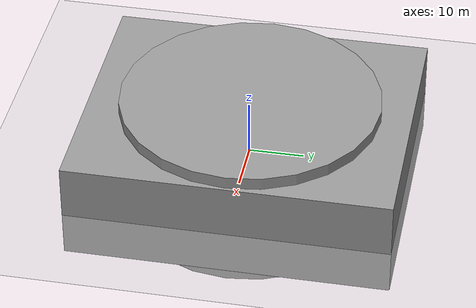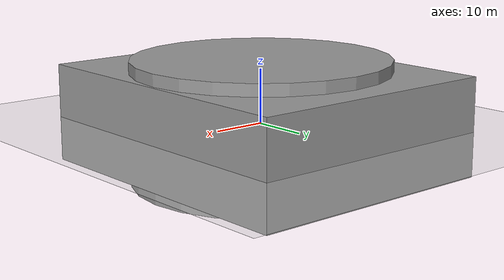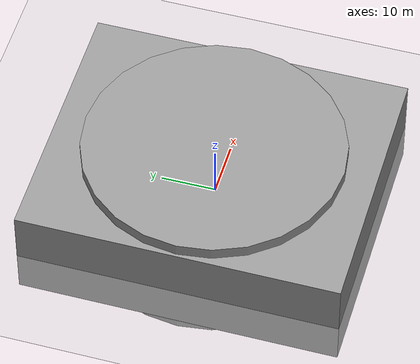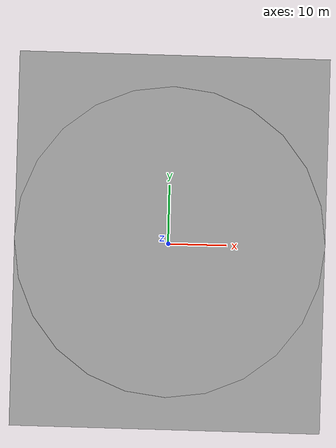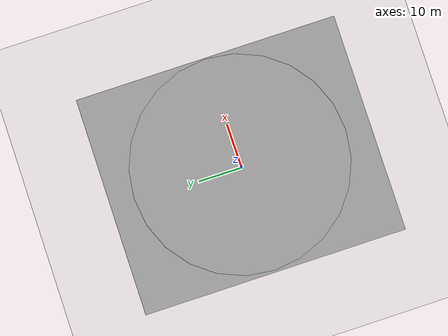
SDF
<sdf version="1.6">
 <world name="default">
  <light name="sun" type="directional">
   <pose>0 0 10 0 -0 0</pose>
   <diffuse>0.8 0.8 0.8 1</diffuse>
   <specular>0.2 0.2 0.2 1</specular>
   <attenuation>
    <range>1000</range>
    <constant>0.9</constant>
    <linear>0.01</linear>
    <quadratic>0.001</quadratic>
   </attenuation>
   <direction>-0.5 0.1 -0.9</direction>
  </light>
  <model name="ground_plane">
   <static>1</static>
   <link name="link">
    <collision name="collision">
     <geometry><plane><normal>0 0 1</normal><size>100 100</size></plane></geometry>
     <surface>
      <contact><collide_bitmask>65535</collide_bitmask></contact>
      <friction><ode><mu>100</mu><mu2>50</mu2></ode></friction>
     </surface>
    </collision>
    <visual name="visual">
     <cast_shadows>0</cast_shadows>
     <geometry><plane><normal>0 0 1</normal><size>100 100</size></plane></geometry>
     <material>
      <script><uri>file://media/materials/scripts/gazebo.material</uri><name>Gazebo/Grey</name></script>
     </material>
    </visual>
   </link>
  </model>
  <gravity>0 0 -9.8</gravity>
  <magnetic_field>6e-06 2.3e-05 -4.2e-05</magnetic_field>
  <atmosphere type="adiabatic"/>
  <physics name="default_physics" default="0" type="ode">
   <max_step_size>0.001</max_step_size>
   <real_time_factor>1</real_time_factor>
   <real_time_update_rate>1000</real_time_update_rate>
  </physics>
  <scene><ambient>0.4 0.4 0.4 1</ambient><background>0.7 0.7 0.7 1</background><shadows>1</shadows></scene>
  <spherical_coordinates>
   <surface_model>EARTH_WGS84</surface_model>
   <latitude_deg>0</latitude_deg>
   <longitude_deg>0</longitude_deg>
   <elevation>0</elevation>
   <heading_deg>0</heading_deg>
  </spherical_coordinates>
  <model name="unit_box">
   <pose>0.247312 0.22963 0.802626 -4.5e-05 -2.9e-05 5.6e-05</pose>
   <link name="link">
    <inertial>
     <mass>1</mass>
     <inertia>
      <ixx>0.166667</ixx>
      <ixy>0</ixy>
      <ixz>0</ixz>
      <iyy>0.166667</iyy>
      <iyz>0</iyz>
      <izz>0.166667</izz>
     </inertia>
    </inertial>
    <collision name="collision"><geometry><box><size>48.2671 58.2264 18.0991</size></box></geometry></collision>
    <visual name="visual">
     <geometry><box><size>48.2671 58.2264 18.0991</size></box></geometry>
     <material>
      <script><name>Gazebo/Grey</name><uri>file://media/materials/scripts/gazebo.material</uri></script>
     </material>
    </visual>
   </link>
  </model>
  <model name="unit_cylinder">
   <pose>0.240745 0.29494 0.797172 -0.000847 0.000382 -0.000326</pose>
   <link name="link">
    <inertial>
     <mass>1</mass>
     <inertia><ixx>0.145833</ixx><ixy>0</ixy><ixz>0</ixz><iyy>0.145833</iyy><iyz>0</iyz><izz>0.125</izz></inertia>
    </inertial>
    <collision name="collision">
     <geometry><cylinder><radius>23.629</radius><length>22.5609</length></cylinder></geometry>
    </collision>
    <visual name="visual">
     <geometry><cylinder><radius>23.629</radius><length>22.5609</length></cylinder></geometry>
     <material>
      <script><name>Gazebo/Grey</name><uri>file://media/materials/scripts/gazebo.material</uri></script>
     </material>
    </visual>
   </link>
  </model>
  <model name="unit_box_clone">
   <pose>0.181146 0.268346 0.802626 3.6e-05 2.5e-05 5.6e-05</pose>
   <link name="link">
    <inertial>
     <mass>1</mass>
     <inertia>
      <ixx>0.166667</ixx>
      <ixy>0</ixy>
      <ixz>0</ixz>
      <iyy>0.166667</iyy>
      <iyz>0</iyz>
      <izz>0.166667</izz>
     </inertia>
    </inertial>
    <collision name="collision"><geometry><box><size>0.020718 0.017173 0.05525</size></box></geometry></collision>
    <visual name="visual">
     <geometry><box><size>0.020718 0.017173 0.05525</size></box></geometry>
     <material>
      <script><name>Gazebo/Grey</name><uri>file://media/materials/scripts/gazebo.material</uri></script>
     </material>
    </visual>
   </link>
  </model>
  <model name="unit_cylinder_clone">
   <pose>0.204021 0.322627 0.797162 -0.0008 0.000386 -0.000326</pose>
   <link name="link">
    <inertial>
     <mass>1</mass>
     <inertia><ixx>0.145833</ixx><ixy>0</ixy><ixz>0</ixz><iyy>0.145833</iyy><iyz>0</iyz><izz>0.125</izz></inertia>
    </inertial>
    <collision name="collision">
     <geometry><cylinder><radius>0.0105804</radius><length>0.0443242</length></cylinder></geometry>
    </collision>
    <visual name="visual">
     <geometry><cylinder><radius>0.0105804</radius><length>0.0443242</length></cylinder></geometry>
     <material>
      <script><name>Gazebo/Grey</name><uri>file://media/materials/scripts/gazebo.material</uri></script>
     </material>
    </visual>
   </link>
  </model>
  <model name="unit_box_clone_clone">
   <pose>0.155351 0.297696 0.802626 3.6e-05 2.5e-05 5.6e-05</pose>
   <link name="link">
    <inertial>
     <mass>1</mass>
     <inertia>
      <ixx>0.166667</ixx>
      <ixy>0</ixy>
      <ixz>0</ixz>
      <iyy>0.166667</iyy>
      <iyz>0</iyz>
      <izz>0.166667</izz>
     </inertia>
    </inertial>
    <collision name="collision"><geometry><box><size>0.020718 0.017173 0.05525</size></box></geometry></collision>
    <visual name="visual">
     <geometry><box><size>0.020718 0.017173 0.05525</size></box></geometry>
     <material>
      <script><name>Gazebo/Grey</name><uri>file://media/materials/scripts/gazebo.material</uri></script>
     </material>
    </visual>
   </link>
  </model>
  <model name="unit_cylinder_clone_clone">
   <pose>0.191297 0.235264 0.797162 -0.0008 0.000386 -0.000326</pose>
   <link name="link">
    <inertial>
     <mass>1</mass>
     <inertia><ixx>0.145833</ixx><ixy>0</ixy><ixz>0</ixz><iyy>0.145833</iyy><iyz>0</iyz><izz>0.125</izz></inertia>
    </inertial>
    <collision name="collision">
     <geometry><cylinder><radius>0.0105804</radius><length>0.0443242</length></cylinder></geometry>
    </collision>
    <visual name="visual">
     <geometry><cylinder><radius>0.0105804</radius><length>0.0443242</length></cylinder></geometry>
     <material>
      <script><name>Gazebo/Grey</name><uri>file://media/materials/scripts/gazebo.material</uri></script>
     </material>
    </visual>
   </link>
  </model>
  <model name="unit_box_clone_0">
   <pose>0.223459 0.267426 0.802626 3.6e-05 2.5e-05 5.6e-05</pose>
   <link name="link">
    <inertial>
     <mass>1</mass>
     <inertia>
      <ixx>0.166667</ixx>
      <ixy>0</ixy>
      <ixz>0</ixz>
      <iyy>0.166667</iyy>
      <iyz>0</iyz>
      <izz>0.166667</izz>
     </inertia>
    </inertial>
    <collision name="collision"><geometry><box><size>0.020718 0.017173 0.05525</size></box></geometry></collision>
    <visual name="visual">
     <geometry><box><size>0.020718 0.017173 0.05525</size></box></geometry>
     <material>
      <script><name>Gazebo/Grey</name><uri>file://media/materials/scripts/gazebo.material</uri></script>
     </material>
    </visual>
   </link>
  </model>
 </world>
</sdf>
